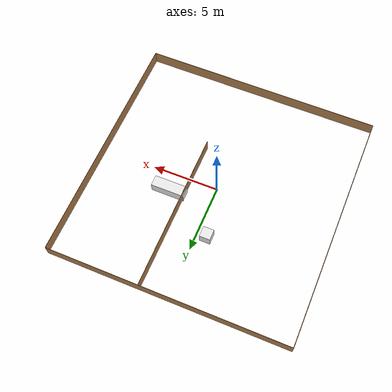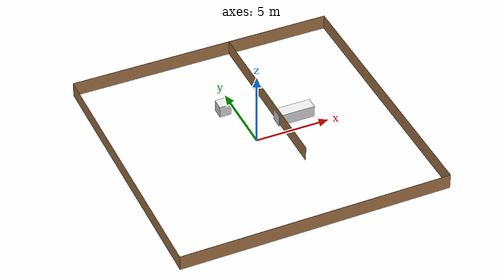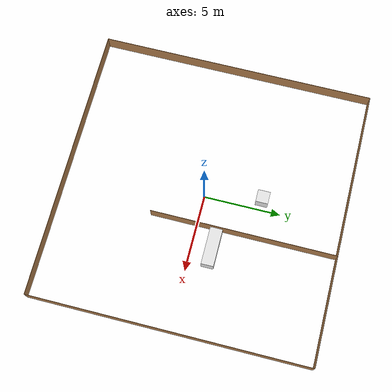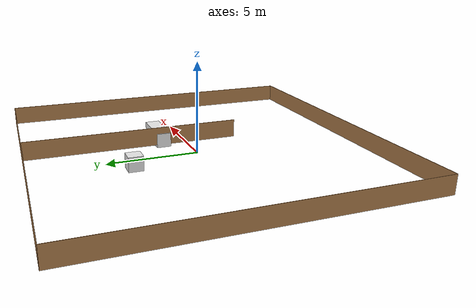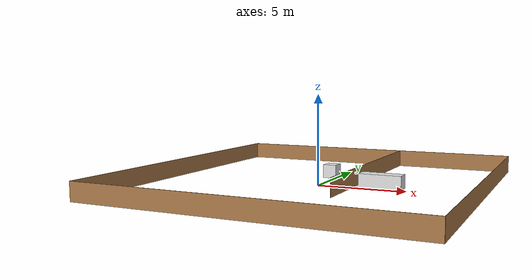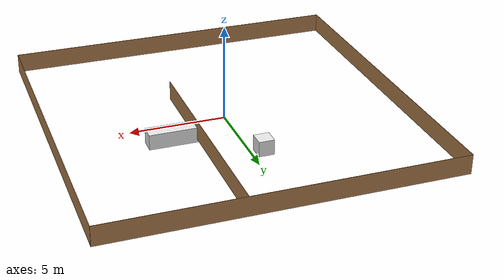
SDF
<?xml version="1.0" ?>
<sdf version="1.5">
  <model name="cabinet">
    <static>true</static>
    <link name="cabinet_bottom_plate">
      <inertial>
        <pose>0 0 -1 0 0 0</pose>
        <inertia>
          <ixx>2.050000</ixx>
          <ixy>0</ixy>
          <ixz>0</ixz>
          <iyy>2.050000</iyy>
          <iyz>0</iyz>
          <izz>2.050000</izz>
        </inertia>
        <mass>25.000000</mass>
      </inertial>

        <collision name='two_two'>
          <pose>-0.735 3.67 0.25 0 0 0</pose>
          <geometry>
            <box>
              <size>0.8 0.8 0.8</size>
            </box>
          </geometry>
          <max_contacts>10</max_contacts>
          <surface>
            <bounce/>
            <friction>
              <ode/>
            </friction>
            <contact>
              <ode/>
            </contact>
          </surface>
        </collision>

        <visual name='two_two'>
          <pose>-0.735 3.67 0.25 0 0 0</pose>
          <geometry>
            <box>
              <size>0.8 0.8 0.8</size>
            </box>
          </geometry>
          <material>
            <script>
              <uri>file://media/materials/scripts/gazebo.material</uri>
              <name>Gazebo/White</name>
            </script>
          </material>
        </visual>

        <collision name='four'>
          <pose>3.2 1.3 0.25 0 0 0</pose>
          <geometry>
            <box>
              <size>2.5 0.8 0.8</size>
            </box>
          </geometry>
          <max_contacts>10</max_contacts>
          <surface>
            <bounce/>
            <friction>
              <ode/>
            </friction>
            <contact>
              <ode/>
            </contact>
          </surface>
        </collision>

        <visual name='four'>
          <pose>3.2 1.3 0.25 0 0 0</pose>
          <geometry>
            <box>
              <size>2.5 0.8 0.8</size>
            </box>
          </geometry>
          <material>
            <script>
              <uri>file://media/materials/scripts/gazebo.material</uri>
              <name>Gazebo/White</name>
            </script>
          </material>
        </visual>

      <collision name="cabinet_bottom_plate_geom_cabinet_back_plate">
        <pose>9 0 0.510000 0 0 0</pose>
        <geometry>
          <box>
            <size>0.020000 18 1.020000</size>
          </box>
        </geometry>
      </collision>
      <visual name="cabinet_bottom_plate_geom_cabinet_back_plate_visual">
        <pose>9 0 0.510000 0 0 0</pose>
        <geometry>
          <box>
            <size>0.020000 18 1.020000</size>
          </box>
        </geometry>
        <material>
          <script>
            <uri>file://media/materials/scripts/gazebo.material</uri>
            <name>Gazebo/Wood</name>
          </script>
        </material>
      </visual>

      <collision name="cabinet_bottom_plate_geom_cabinet_back_plate3">
        <pose>2 3 0.510000 0 0 0</pose>
        <geometry>
          <box>
            <size>0.020000 12 1.020000</size>
          </box>
        </geometry>
      </collision>
      <visual name="cabinet_bottom_plate_geom_cabinet_back_plate_visual3">
        <pose>2 3 0.510000 0 0 0</pose>
        <geometry>
          <box>
            <size>0.020000 12 1.020000</size>
          </box>
        </geometry>
        <material>
          <script>
            <uri>file://media/materials/scripts/gazebo.material</uri>
            <name>Gazebo/Wood</name>
          </script>
        </material>
      </visual>

      <collision name="cabinet_bottom_plate_geom_cabinet_back_plate2">
        <pose>-9 0 0.510000 0 0 0</pose>
        <geometry>
          <box>
            <size>0.020000 18 1.020000</size>
          </box>
        </geometry>
      </collision>
      <visual name="cabinet_bottom_plate_geom_cabinet_back_plate_visual2">
        <pose>-9 0 0.510000 0 0 0</pose>
        <geometry>
          <box>
            <size>0.020000 18 1.020000</size>
          </box>
        </geometry>
        <material>
          <script>
            <uri>file://media/materials/scripts/gazebo.material</uri>
            <name>Gazebo/Wood</name>
          </script>
        </material>
      </visual>

      <collision name="cabinet_bottom_plate_geom_cabinet_left_plate">
        <pose>0 9 0.510000 0 0 0</pose>
        <geometry>
          <box>
            <size>18 0.020000 1.020000</size>
          </box>
        </geometry>
      </collision>
      <visual name="cabinet_bottom_plate_geom_cabinet_left_plate_visual">
        <pose>0 9 0.510000 0 0 0</pose>
        <geometry>
          <box>
            <size>18 0.020000 1.020000</size>
          </box>
        </geometry>
        <material>
          <script>
            <uri>file://media/materials/scripts/gazebo.material</uri>
            <name>Gazebo/Wood</name>
          </script>
        </material>
      </visual>

      <collision name="cabinet_bottom_plate_geom_cabinet_right_plate">
        <pose>0 -9 0.510000 0 0 0</pose>
        <geometry>
          <box>
            <size>18 0.020000 1.020000</size>
          </box>
        </geometry>
      </collision>
      <visual name="cabinet_bottom_plate_geom_cabinet_right_plate_visual">
        <pose>0 -9 0.510000 0 0 0</pose>
        <geometry>
          <box>
            <size>18 0.020000 1.020000</size>
          </box>
        </geometry>
        <material>
          <script>
            <uri>file://media/materials/scripts/gazebo.material</uri>
            <name>Gazebo/Wood</name>
          </script>
        </material>
      </visual>

    </link>
  </model>
</sdf>
